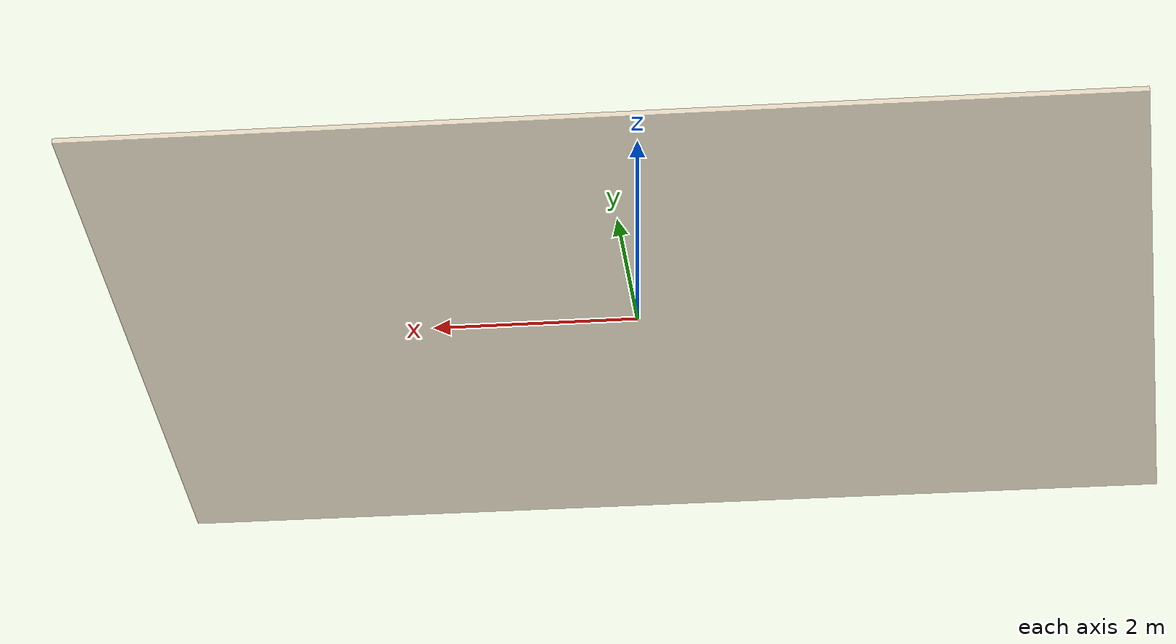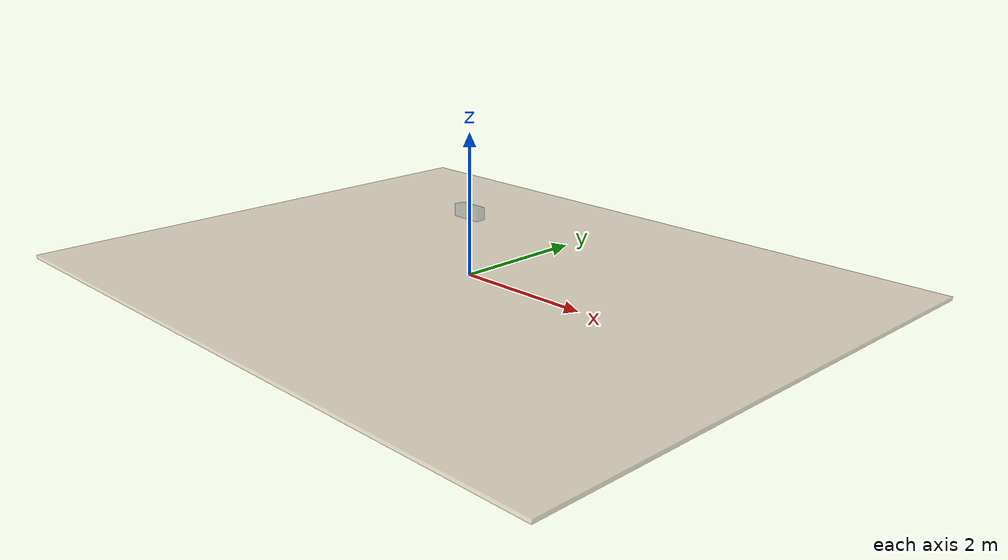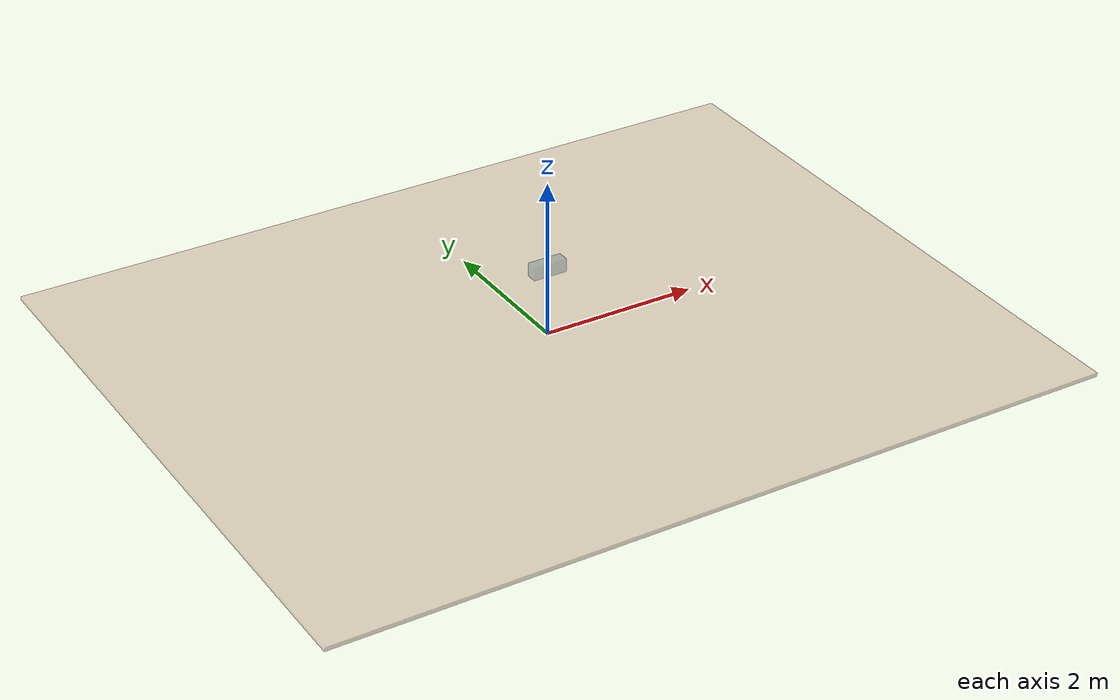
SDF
<?xml version='1.0'?>
<sdf version='1.9'>
  <model name='centaur_sim_scene'>

  <link name='ground'>
    <visual name='visual'>
      <pose>0 0 -0.025 0 0 0</pose>
      <geometry>
        <box>  <size>10.0 8.0 0.05</size> </box>
      </geometry>
      <material>
        <diffuse>0.9 0.8 0.7 0.6</diffuse>
      </material>
    </visual>
    <collision name="collision">
      <pose>0 0 -0.025 0 0 0</pose>
      <geometry>
        <box>  <size>10.0 8.0 0.05</size> </box>
      </geometry>
    </collision>
  </link>

  <frame name='ball_joint_frame' attached_to='ground'>
    <pose relative_to='ground'>0.216 0 0.91 0 0 0</pose>
  </frame>

  <joint name='ball_joint' type='ball'>
    <pose relative_to='ball_joint_frame'>0 0 0 0 0 0</pose>
    <parent>ground</parent>
    <child>floating_base</child>
  </joint>

  <link name='floating_base'>
    <pose relative_to='ball_joint_frame'>-0.216 0 0 0 0 0</pose>
    <visual name='visual'>
      <pose relative_to='ball_joint_frame'>-0.216 0 0 0 0 0</pose>
      <geometry> <sphere> <radius>0.02</radius> </sphere> </geometry>
      <material>
        <diffuse>0.8 0.1 0.1 0.6</diffuse>
      </material>
    </visual>
  </link>

  <joint name='floating_base_fixed_to_torso' type='fixed'>
    <parent>floating_base</parent>
    <child>torso</child>
  </joint>

  <link name='torso'>
    <visual name='visual'>
      <pose relative_to='floating_base'>0 0 0 0 0 0</pose>
      <geometry>
        <box> <size>0.432 0.146 0.17</size> </box>
      </geometry>
      <material>
        <diffuse>0.2 0.2 0.2 0.4</diffuse>
      </material>
    </visual>
  </link>

  </model>

</sdf>
